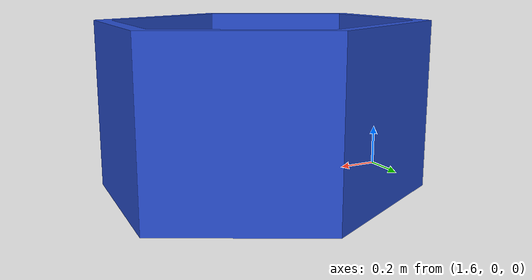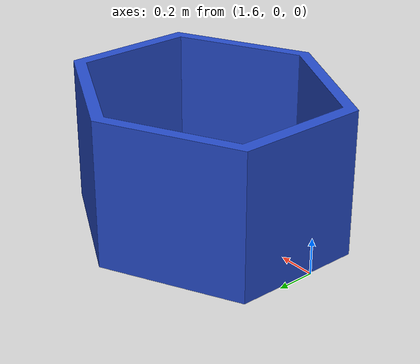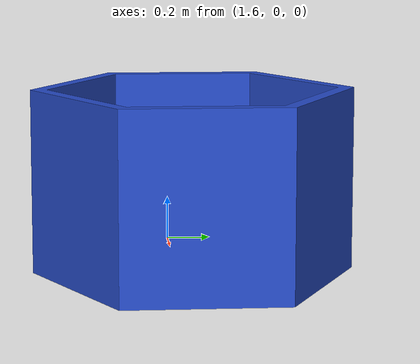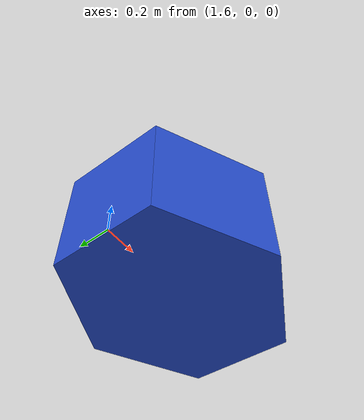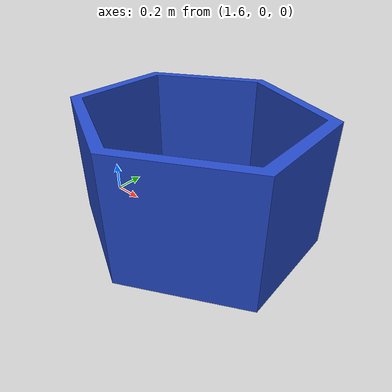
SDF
<?xml version="1.0" ?>
<sdf version="1.6">
  <model name="blue_altigen">
    <!-- Modelin sabit olması (düşmemesi) için static true -->
    <static>true</static>
    <link name="link">
      <!-- Modelin dünya içindeki varsayılan konumu ve yönü -->
      <pose>0 0 0 0 0 0</pose>
      <!-- Çarpışma (physics) şekli tanımı -->
      <collision name="collision">
        <geometry>
          <mesh>
            <uri>model://blue_altigen/meshes/altigen.obj</uri>
            <scale>0.07 0.07 0.04</scale>
          </mesh>
        </geometry>
      </collision>
      <!-- Görsel (render) şekli tanımı -->
      <visual name="visual">
        <geometry>
          <mesh>
            <uri>model://blue_altigen/meshes/altigen.obj</uri>
            <scale>0.07 0.07 0.04</scale>
          </mesh>
        </geometry>
        <material>
          <script>
            <!-- Gazebo'nun standart malzeme kütüphanesini kullan -->
            <uri>file://media/materials/scripts/gazebo.material</uri>
            <name>Gazebo/Blue</name>
          </script>
        </material>
      </visual>
    </link>
  </model>
</sdf>
